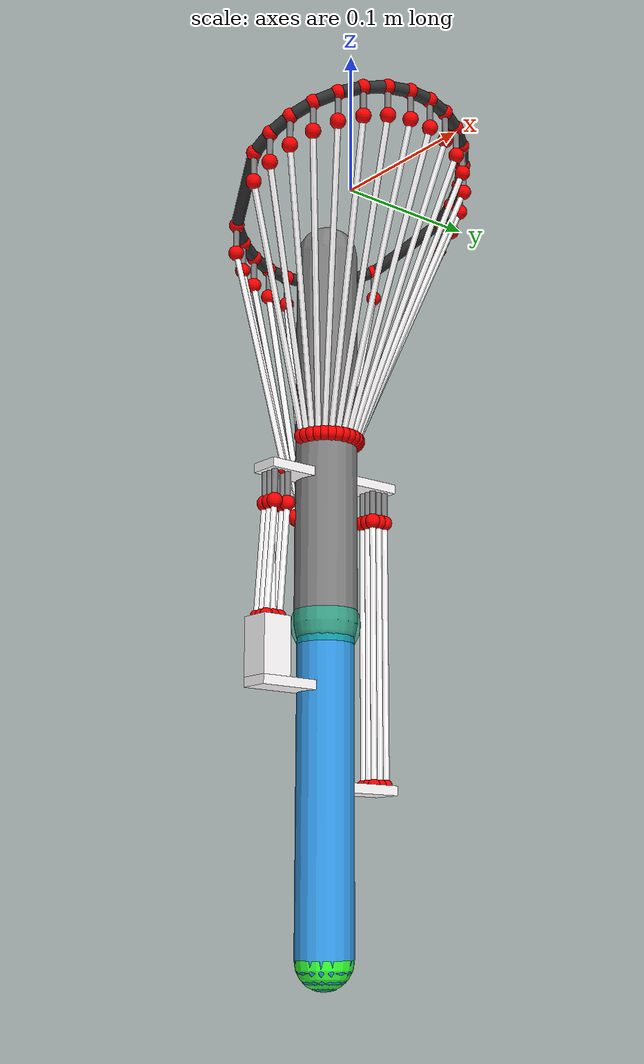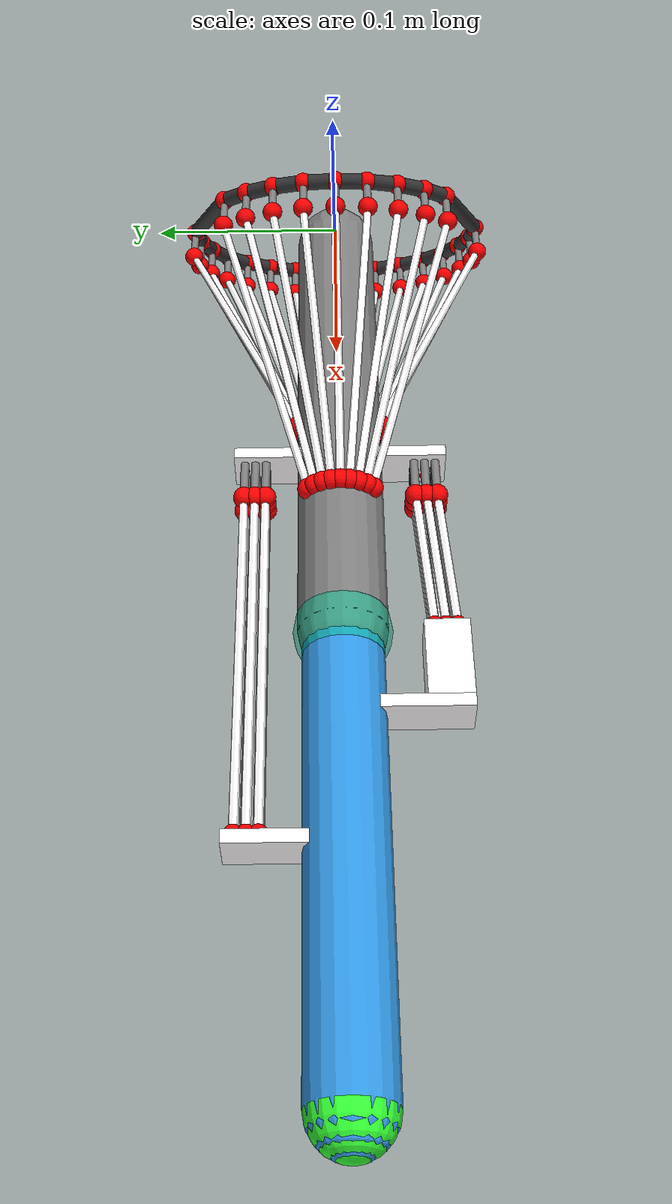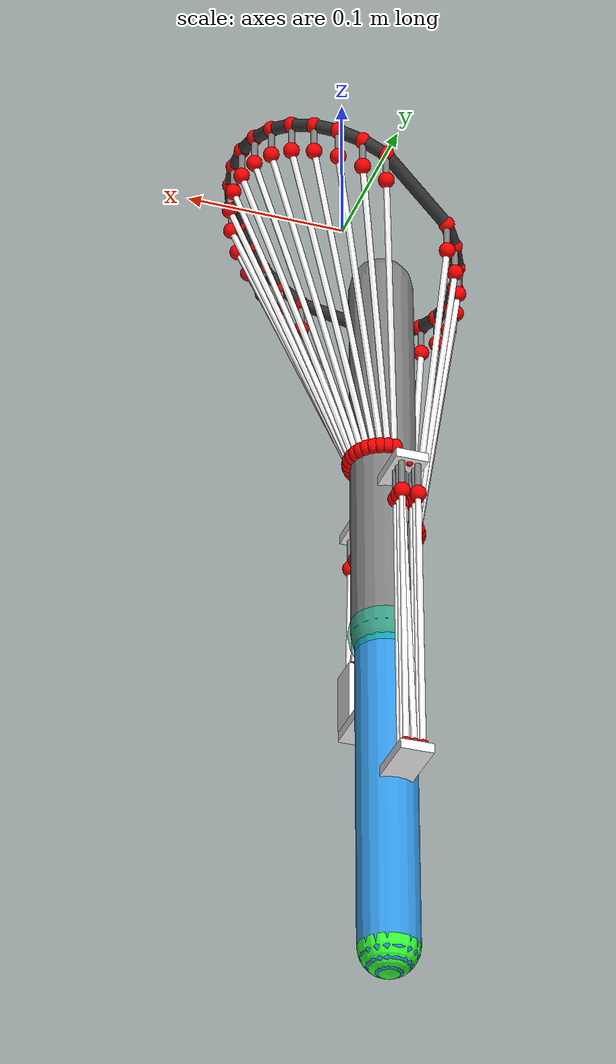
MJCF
<!--
cd ~/mujoco-3.3.5/bin
./simulate ~/Musculoskeletal-System-main/muscular-skeleton-system/system_model_n=4_008.xml
-->

<mujoco model="example4">
<!--    使用trained twice的muscle   -->
    <compiler angle="degree" coordinate="local"/>
    <option timestep="0.002"/>
    <default>
        <site size="0.005" rgba="1 0 0 1"/>
        <!-- switched-state version: tendon force law is handled in Python; XML keeps geometry/range only -->
        <!-- 气动肌肉的物理参数：
             无负载原长：144.9；收缩：86.5 (+40固定长度) springlength="0.185"
             收缩比：0.597
             加220g负载后：241.9；收缩：185.9 （最大不变形负载）
             平均刚度：11.5
             -->
        <!-- biceps tendon -->
        <default class="tendon_A">
            <tendon range="0.05 1"  limited="true"
                     springlength="0" width="0.002" stiffness="0"
                     damping="0" rgba="1 0.99 0.99 1"/>
        </default>

        <default class="tendon_B">
            <tendon range="0.05 1"  limited="true"
                     springlength="0" width="0.002" stiffness="0"
                     damping="0" rgba="1 0.99 0.99 1"/>
        </default>

        <default class="tendon_C">
            <tendon range="0.05 1"  limited="true"
                     springlength="0" width="0.002" stiffness="0"
                     damping="0" rgba="1 0.99 0.99 1"/>
        </default>

        <default class="tendon_D">
            <tendon range="0.05 1"  limited="true"
                     springlength="0" width="0.002" stiffness="0"
                     damping="0" rgba="1 0.99 0.99 1"/>
        </default>

        <default class="tendon_E">
            <tendon range="0.05 1"  limited="true"
                     springlength="0" width="0.002" stiffness="0"
                     damping="0" rgba="1 0.99 0.99 1"/>
        </default>

        <default class="tendon_F">
            <tendon range="0.05 1"  limited="true"
                     springlength="0" width="0.002" stiffness="0"
                     damping="0" rgba="1 0.99 0.99 1"/>
        </default>

        <default class="tendon_G">
            <tendon range="0.05 1"  limited="true"
                     springlength="0" width="0.002" stiffness="0"
                     damping="0" rgba="1 0.99 0.99 1"/>
        </default>

        <default class="tendon_H">
            <tendon range="0.05 1"  limited="true"
                     springlength="0" width="0.002" stiffness="0"
                     damping="0" rgba="1 0.99 0.99 1"/>
        </default>

        <!-- triceps tendon -->
        <default class="tendon_I">
            <tendon range="0.05 1"  limited="true"
                     springlength="0" width="0.002" stiffness="0"
                     damping="0" rgba="1 0.99 0.99 1"/>
        </default>

        <default class="tendon_J">
            <tendon range="0.05 1"  limited="true"
                     springlength="0" width="0.002" stiffness="0"
                     damping="0" rgba="1 0.99 0.99 1"/>
        </default>

        <default class="tendon_K">
            <tendon range="0.05 1"  limited="true"
                     springlength="0" width="0.002" stiffness="0"
                     damping="0" rgba="1 0.99 0.99 1"/>
        </default>

        <default class="tendon_L">
            <tendon range="0.05 1"  limited="true"
                     springlength="0" width="0.002" stiffness="0"
                     damping="0" rgba="1 0.99 0.99 1"/>
        </default>

        <default class="tendon_M">
            <tendon range="0.05 1"  limited="true"
                     springlength="0" width="0.002" stiffness="0"
                     damping="0" rgba="1 0.99 0.99 1"/>
        </default>

        <!-- up-low-connecting tendon -->
        <default class="tendon_N">
            <tendon range="0.05 1"  limited="true"
                     springlength="0" width="0.002" stiffness="0"
                     damping="0" rgba="1 0.99 0.99 1"/>
        </default>

        <default class="tendon_O">
            <tendon range="0.03 1"  limited="true"
                     springlength="0" width="0.002" stiffness="0"
                     damping="0" rgba="1 0.99 0.99 1"/>
        </default>

        <muscle force="0" timeconst="0.1 0.1" scale="1"/>
    </default>

    <asset>
        <texture type="skybox" builtin="gradient" rgb1="1 1 1" rgb2="0.6 0.8 1" width="256" height="256"/>
    </asset>

    <worldbody>
        <!-- 将相邻 fixed_point* 用细胶囊连起来，形成镂空“环”
                 半径：100 mm；倾斜角：30度
             -->
        <body name="anchor_ring" pos="0 0 0">
            <geom name="ring_seg_01" type="capsule" fromto=" 0	-0.08	0                         0.01440456	-0.07825184	0.00831648" size="0.004" rgba="0.2 0.2 0.2 1" contype="1" conaffinity="1"/>
            <geom name="ring_seg_02" type="capsule" fromto=" 0.01440456	-0.07825184	0.00831648     0.02817952	-0.0730836	0.01626944" size="0.004" rgba="0.2 0.2 0.2 1" contype="1" conaffinity="1"/>
            <geom name="ring_seg_03" type="capsule" fromto=" 0.02817952	-0.0730836	0.01626944     0.04072296	-0.06472136	0.02351144" size="0.004" rgba="0.2 0.2 0.2 1" contype="1" conaffinity="1"/>
            <geom name="ring_seg_04" type="capsule" fromto=" 0.04072296	-0.06472136	0.02351144     0.05148656	-0.05353048	0.02972576" size="0.004" rgba="0.2 0.2 0.2 1" contype="1" conaffinity="1"/>
            <geom name="ring_seg_05" type="capsule" fromto=" 0.05148656	-0.05353048	0.02972576     0.06	-0.04	0.03464104" size="0.004" rgba="0.2 0.2 0.2 1" contype="1" conaffinity="1"/>
            <geom name="ring_seg_06" type="capsule" fromto=" 0.06	-0.04	0.03464104             0.06589112	-0.02472136	0.03804224" size="0.004" rgba="0.2 0.2 0.2 1" contype="1" conaffinity="1"/>
            <geom name="ring_seg_07" type="capsule" fromto=" 0.06589112	-0.02472136	0.03804224     0.06890248	-0.00836224	0.03978088" size="0.004" rgba="0.2 0.2 0.2 1" contype="1" conaffinity="1"/>
            <geom name="ring_seg_08" type="capsule" fromto=" 0.06890248	-0.00836224	0.03978088     0.06890248	0.00836224	0.03978088" size="0.004" rgba="0.2 0.2 0.2 1" contype="1" conaffinity="1"/>
            <geom name="ring_seg_09" type="capsule" fromto=" 0.06890248	0.00836224	0.03978088     0.06589112	0.02472136	0.03804224" size="0.004" rgba="0.2 0.2 0.2 1" contype="1" conaffinity="1"/>
            <geom name="ring_seg_10" type="capsule" fromto=" 0.06589112	0.02472136	0.03804224     0.06	0.04	0.03464104" size="0.004" rgba="0.2 0.2 0.2 1" contype="1" conaffinity="1"/>
            <geom name="ring_seg_11" type="capsule" fromto=" 0.06	0.04	0.03464104             0.05148656	0.05353048	0.02972576" size="0.004" rgba="0.2 0.2 0.2 1" contype="1" conaffinity="1"/>
            <geom name="ring_seg_12" type="capsule" fromto=" 0.05148656	0.05353048	0.02972576     0.04072296	0.06472136	0.02351144" size="0.004" rgba="0.2 0.2 0.2 1" contype="1" conaffinity="1"/>
            <geom name="ring_seg_13" type="capsule" fromto=" 0.04072296	0.06472136	0.02351144     0.02817952	0.0730836	0.01626944" size="0.004" rgba="0.2 0.2 0.2 1" contype="1" conaffinity="1"/>
            <geom name="ring_seg_14" type="capsule" fromto=" 0.02817952	0.0730836	0.01626944     0.01440456	0.07825184	0.00831648" size="0.004" rgba="0.2 0.2 0.2 1" contype="1" conaffinity="1"/>
            <geom name="ring_seg_15" type="capsule" fromto=" 0.01440456	0.07825184	0.00831648     0	0.08	0" size="0.004" rgba="0.2 0.2 0.2 1" contype="1" conaffinity="1"/>
            <geom name="ring_seg_16" type="capsule" fromto=" 0	0.08	0                            -0.04635872	0.0594516	-0.0267652" size="0.004" rgba="0.2 0.2 0.2 1" contype="1" conaffinity="1"/>

            <geom name="ring_seg_17" type="capsule" fromto="-0.04635872	0.0594516	-0.0267652   -0.05605032	0.0470228	-0.03236064" size="0.004" rgba="0.2 0.2 0.2 1" contype="1" conaffinity="1"/>
            <geom name="ring_seg_18" type="capsule" fromto="-0.05605032	0.0470228	-0.03236064   -0.06329232	0.03253896	-0.03654184" size="0.004" rgba="0.2 0.2 0.2 1" contype="1" conaffinity="1"/>
            <geom name="ring_seg_19" type="capsule" fromto="-0.06329232	0.03253896	-0.03654184   -0.06776808	0.01663296	-0.03912592" size="0.004" rgba="0.2 0.2 0.2 1" contype="1" conaffinity="1"/>
            <geom name="ring_seg_20" type="capsule" fromto="-0.06776808	0.01663296	-0.03912592   -0.069282032	0	-0.04" size="0.004" rgba="0.2 0.2 0.2 1" contype="1" conaffinity="1"/>
            <geom name="ring_seg_21" type="capsule" fromto="-0.069282032	0	-0.04                -0.06776808	-0.01663296	-0.03912592" size="0.004" rgba="0.2 0.2 0.2 1" contype="1" conaffinity="1"/>
            <geom name="ring_seg_22" type="capsule" fromto="-0.06776808	-0.01663296	-0.03912592   -0.06329232	-0.03253896	-0.03654184" size="0.004" rgba="0.2 0.2 0.2 1" contype="1" conaffinity="1"/>
            <geom name="ring_seg_23" type="capsule" fromto="-0.06329232	-0.03253896	-0.03654184   -0.05605032	-0.0470228	-0.03236064" size="0.004" rgba="0.2 0.2 0.2 1" contype="1" conaffinity="1"/>
            <geom name="ring_seg_24" type="capsule" fromto="-0.05605032	-0.0470228	-0.03236064   -0.04635872	-0.0594516	-0.0267652" size="0.004" rgba="0.2 0.2 0.2 1" contype="1" conaffinity="1"/>
            <geom name="ring_seg_25" type="capsule" fromto="-0.04635872	-0.0594516	-0.0267652    0	-0.08	0" size="0.004" rgba="0.2 0.2 0.2 1" contype="1" conaffinity="1"/>
        </body>

        <!-- 固定基座，无关节 => 焊接到世界，不随 rod 运动 -->
        <body name="anchor_base" pos="0 0 0">
            <site name="fixed_point1"  pos="0	-0.08	0"/>
            <body name="connect_1" pos="0	-0.08	0">
                <joint name="joint1" type="ball" range="0 80" damping="0.1" limited="true"/>
                <geom fromto="0 0   0  0    0	-0.02" size="0.002" type="capsule" density="1200"/>
                <site name="connecting_point1" pos="0 0 -0.02"/>
            </body>
            <site name="fixed_point2"  pos="0.01440456	-0.07825184	0.00831648"/>
            <body name="connect_2" pos="0.01440456	-0.07825184	0.00831648">
                <joint name="joint2" type="ball" range="0 80" damping="0.1" limited="true"/>
                <geom fromto="0 0   0  0    0	-0.02" size="0.002" type="capsule" density="1200"/>
                <site name="connecting_point2" pos="0 0 -0.02"/>
            </body>

            <site name="fixed_point3"  pos="0.02817952	-0.0730836	0.01626944"/>
            <body name="connect_3" pos="0.02817952	-0.0730836	0.01626944">
                <joint name="joint3" type="ball" range="0 80" damping="0.1" limited="true"/>
                <geom fromto="0 0   0  0    0	-0.02" size="0.002" type="capsule" density="1200"/>
                <site name="connecting_point3" pos="0 0 -0.02"/>
            </body>

            <site name="fixed_point4"  pos="0.04072296	-0.06472136	0.02351144"/>
            <body name="connect_4" pos="0.04072296	-0.06472136	0.02351144">
                <joint name="joint4" type="ball" range="0 80" damping="0.1" limited="true"/>
                <geom fromto="0 0   0  0    0	-0.02" size="0.002" type="capsule" density="1200"/>
                <site name="connecting_point4" pos="0 0 -0.02"/>
            </body>

            <site name="fixed_point5"  pos="0.05148656	-0.05353048	0.02972576"/>
            <body name="connect_5" pos="0.05148656	-0.05353048	0.02972576">
                <joint name="joint5" type="ball" range="0 80" damping="0.1" limited="true"/>
                <geom fromto="0 0   0  0    0	-0.02" size="0.002" type="capsule" density="1200"/>
                <site name="connecting_point5" pos="0 0 -0.02"/>
            </body>

            <site name="fixed_point6"  pos="0.06	-0.04	0.03464104"/>
            <body name="connect_6" pos="0.06	-0.04	0.03464104">
                <joint name="joint6" type="ball" range="0 80" damping="0.1" limited="true"/>
                <geom fromto="0 0   0  0    0	-0.02" size="0.002" type="capsule" density="1200"/>
                <site name="connecting_point6" pos="0 0 -0.02"/>
            </body>

            <site name="fixed_point7"  pos="0.06589112	-0.02472136	0.03804224"/>
            <body name="connect_7" pos="0.06589112	-0.02472136	0.03804224">
                <joint name="joint7" type="ball" range="0 80" damping="0.1" limited="true"/>
                <geom fromto="0 0   0  0    0	-0.02" size="0.002" type="capsule" density="1200"/>
                <site name="connecting_point7" pos="0 0 -0.02"/>
            </body>

            <site name="fixed_point8"  pos="0.06890248	-0.00836224	0.03978088"/>
            <body name="connect_8" pos="0.06890248	-0.00836224	0.03978088">
                <joint name="joint8" type="ball" range="0 80" damping="0.1" limited="true"/>
                <geom fromto="0 0   0  0    0	-0.02" size="0.002" type="capsule" density="1200"/>
                <site name="connecting_point8" pos="0 0 -0.02"/>
            </body>

            <site name="fixed_point9"  pos="0.06890248	0.00836224	0.03978088"/>
            <body name="connect_9" pos="0.06890248	0.00836224	0.03978088">
                <joint name="joint9" type="ball" range="0 80" damping="0.1" limited="true"/>
                <geom fromto="0 0   0  0    0	-0.02" size="0.002" type="capsule" density="1200"/>
                <site name="connecting_point9" pos="0 0 -0.02"/>
            </body>

            <site name="fixed_point10" pos="0.06589112	0.02472136	0.03804224"/>
            <body name="connect_10" pos="0.06589112	0.02472136	0.03804224">
                <joint name="joint10" type="ball" range="0 80" damping="0.1" limited="true"/>
                <geom fromto="0 0   0  0    0	-0.02" size="0.002" type="capsule" density="1200"/>
                <site name="connecting_point10" pos="0 0 -0.02"/>
            </body>

            <site name="fixed_point11" pos="0.06	0.04	0.03464104"/>
            <body name="connect_11" pos="0.06	0.04	0.03464104">
                <joint name="joint11" type="ball" range="0 80" damping="0.1" limited="true"/>
                <geom fromto="0 0   0  0    0	-0.02" size="0.002" type="capsule" density="1200"/>
                <site name="connecting_point11" pos="0 0 -0.02"/>
            </body>

            <site name="fixed_point12" pos="0.05148656	0.05353048	0.02972576"/>
            <body name="connect_12" pos="0.05148656	0.05353048	0.02972576">
                <joint name="joint12" type="ball" range="0 80" damping="0.1" limited="true"/>
                <geom fromto="0 0   0  0    0	-0.02" size="0.002" type="capsule" density="1200"/>
                <site name="connecting_point12" pos="0 0 -0.02"/>
            </body>

            <site name="fixed_point13" pos="0.04072296	0.06472136	0.02351144"/>
            <body name="connect_13" pos="0.04072296	0.06472136	0.02351144">
                <joint name="joint13" type="ball" range="0 80" damping="0.1" limited="true"/>
                <geom fromto="0 0   0  0    0	-0.02" size="0.002" type="capsule" density="1200"/>
                <site name="connecting_point13" pos="0 0 -0.02"/>
            </body>

            <site name="fixed_point14" pos="0.02817952	0.0730836	0.01626944"/>
            <body name="connect_14" pos="0.02817952	0.0730836	0.01626944">
                <joint name="joint14" type="ball" range="0 80" damping="0.1" limited="true"/>
                <geom fromto="0 0   0  0    0	-0.02" size="0.002" type="capsule" density="1200"/>
                <site name="connecting_point14" pos="0 0 -0.02"/>
            </body>

            <site name="fixed_point15" pos="0.01440456	0.07825184	0.00831648"/>
            <body name="connect_15" pos="0.01440456	0.07825184	0.00831648">
                <joint name="joint15" type="ball" range="0 80" damping="0.1" limited="true"/>
                <geom fromto="0 0   0  0    0	-0.02" size="0.002" type="capsule" density="1200"/>
                <site name="connecting_point15" pos="0 0 -0.02"/>
            </body>

            <site name="fixed_point16" pos="0	0.08	0"/>
            <body name="connect_16" pos="0	0.08	0">
                <joint name="joint16" type="ball" range="0 80" damping="0.1" limited="true"/>
                <geom fromto="0 0   0  0    0	-0.02" size="0.002" type="capsule" density="1200"/>
                <site name="connecting_point16" pos="0 0 -0.02"/>
            </body>

            <site name="fixed_point17" pos="-0.04635872	0.0594516	-0.0267652"/>
            <body name="connect_17" pos="-0.04635872	0.0594516	-0.0267652">
                <joint name="joint17" type="ball" range="0 80" damping="0.1" limited="true"/>
                <geom fromto="0 0   0  0    0	-0.02" size="0.002" type="capsule" density="1200"/>
                <site name="connecting_point17" pos="0 0 -0.02"/>
            </body>

            <site name="fixed_point18" pos="-0.05605032	0.0470228	-0.03236064"/>
            <body name="connect_18" pos="-0.05605032	0.0470228	-0.03236064">
                <joint name="joint18" type="ball" range="0 80" damping="0.1" limited="true"/>
                <geom fromto="0 0   0  0    0	-0.02" size="0.002" type="capsule" density="1200"/>
                <site name="connecting_point18" pos="0 0 -0.02"/>
            </body>

            <site name="fixed_point19" pos="-0.06329232	0.03253896	-0.03654184"/>
            <body name="connect_19" pos="-0.06329232	0.03253896	-0.03654184">
                <joint name="joint19" type="ball" range="0 80" damping="0.1" limited="true"/>
                <geom fromto="0 0   0  0    0	-0.02" size="0.002" type="capsule" density="1200"/>
                <site name="connecting_point19" pos="0 0 -0.02"/>
            </body>

            <site name="fixed_point20" pos="-0.06776808	0.01663296	-0.03912592"/>
            <body name="connect_20" pos="-0.06776808	0.01663296	-0.03912592">
                <joint name="joint20" type="ball" range="0 80" damping="0.1" limited="true"/>
                <geom fromto="0 0   0  0    0	-0.02" size="0.002" type="capsule" density="1200"/>
                <site name="connecting_point20" pos="0 0 -0.02"/>
            </body>

            <site name="fixed_point21" pos="-0.069282032	0	-0.04"/>
            <body name="connect_21" pos="-0.069282032	0	-0.04">
                <joint name="joint21" type="ball" range="0 80" damping="0.1" limited="true"/>
                <geom fromto="0 0   0  0    0	-0.02" size="0.002" type="capsule" density="1200"/>
                <site name="connecting_point21" pos="0 0 -0.02"/>
            </body>

            <site name="fixed_point22" pos="-0.06776808	-0.01663296	-0.03912592"/>
            <body name="connect_22" pos="-0.06776808	-0.01663296	-0.03912592">
                <joint name="joint22" type="ball" range="0 80" damping="0.1" limited="true"/>
                <geom fromto="0 0   0  0    0	-0.02" size="0.002" type="capsule" density="1200"/>
                <site name="connecting_point22" pos="0 0 -0.02"/>
            </body>

            <site name="fixed_point23" pos="-0.06329232	-0.03253896	-0.03654184"/>
            <body name="connect_23" pos="-0.06329232	-0.03253896	-0.03654184">
                <joint name="joint23" type="ball" range="0 80" damping="0.1" limited="true"/>
                <geom fromto="0 0   0  0    0	-0.02" size="0.002" type="capsule" density="1200"/>
                <site name="connecting_point23" pos="0 0 -0.02"/>
            </body>

            <site name="fixed_point24" pos="-0.05605032	-0.0470228	-0.03236064"/>
            <body name="connect_24" pos="-0.05605032	-0.0470228	-0.03236064">
                <joint name="joint24" type="ball" range="0 80" damping="0.1" limited="true"/>
                <geom fromto="0 0   0  0    0	-0.02" size="0.002" type="capsule" density="1200"/>
                <site name="connecting_point24" pos="0 0 -0.02"/>
            </body>

            <site name="fixed_point25" pos="-0.04635872	-0.0594516	-0.0267652"/>
            <body name="connect_25" pos="-0.04635872	-0.0594516	-0.0267652">
                <joint name="joint25" type="ball" range="0 80" damping="0.1" limited="true"/>
                <geom fromto="0 0   0  0    0	-0.02" size="0.002" type="capsule" density="1200"/>
                <site name="connecting_point25" pos="0 0 -0.02"/>
            </body>

        </body>

        <!-- 定义直杆 -->
        <body name="rod" pos="-0.025 0 0">
            <joint name="rod_joint" type="ball" pos="0 0 -0.04" range="0 80" damping="0.1" limited="true"/>
            <!-- 杆长：25cm -->
            <geom fromto="0 0 -0.04  0 0 -0.29" size="0.02" type="capsule"/>
            <inertial pos="0 0 -0.165" mass="0.10" diaginertia="0.003375 0.003375 0.0005"/>

            <!-- 外伸耳板：上下臂肌肉，上臂anchorpoint -->
            <geom name="anchor_plate1" type="box" pos="0.00 0.03 -0.195"
                size="0.01 0.02 0.003" contype="0" conaffinity="0" density="1200" rgba="1 0.99 0.99 1"/>
            <geom name="anchor_plate2" type="box" pos="0.00 -0.03 -0.195"
                size="0.01 0.02 0.003" contype="0" conaffinity="0" density="1200" rgba="1 0.99 0.99 1"/>

            <!-- 耳板上的连接孔位（用于 tendon/muscle 路径点） -->
            <site name="up_front1" pos="-0.005 0.035 -0.198" size="0.002" rgba="1 0 0 1"/>
            <body name="updown_front_connect_1" pos="-0.005 0.035 -0.198">
                <joint name="updown_front_joint1" type="ball" range="0 80" damping="0.1" limited="true"/>
                <geom fromto="0 0   0  0    0	-0.02" size="0.002" type="capsule" density="1200"/>
                <site name="up_front_attach1" pos="0 0 -0.02"/>
            </body>

            <site name="up_front2" pos=" 0.00  0.035 -0.198" size="0.002" rgba="1 0 0 1"/>
            <body name="updown_front_connect_2" pos="0.00 0.035 -0.198">
                <joint name="updown_front_joint2" type="ball" range="0 80" damping="0.1" limited="true"/>
                <geom fromto="0 0   0  0    0	-0.02" size="0.002" type="capsule" density="1200"/>
                <site name="up_front_attach2" pos="0 0 -0.02"/>
            </body>

            <site name="up_front3" pos=" 0.005 0.035 -0.198" size="0.002" rgba="1 0 0 1"/>
            <body name="updown_front_connect_3" pos="0.005 0.035 -0.198">
                <joint name="updown_front_joint3" type="ball" range="0 80" damping="0.1" limited="true"/>
                <geom fromto="0 0   0  0    0	-0.02" size="0.002" type="capsule" density="1200"/>
                <site name="up_front_attach3" pos="0 0 -0.02"/>
            </body>

            <site name="up_front4" pos="-0.005 0.04  -0.198" size="0.002" rgba="1 0 0 1"/>
            <body name="updown_front_connect_4" pos="-0.005 0.04 -0.198">
                <joint name="updown_front_joint4" type="ball" range="0 80" damping="0.1" limited="true"/>
                <geom fromto="0 0   0  0    0	-0.02" size="0.002" type="capsule" density="1200"/>
                <site name="up_front_attach4" pos="0 0 -0.02"/>
            </body>

            <site name="up_front5" pos=" 0.005 0.04  -0.198" size="0.002" rgba="1 0 0 1"/>
            <body name="updown_front_connect_5" pos="0.005 0.04 -0.198">
                <joint name="updown_front_joint5" type="ball" range="0 80" damping="0.1" limited="true"/>
                <geom fromto="0 0   0  0    0	-0.02" size="0.002" type="capsule" density="1200"/>
                <site name="up_front_attach5" pos="0 0 -0.02"/>
            </body>

            <site name="up_front6" pos="-0.005 0.045 -0.198" size="0.002" rgba="1 0 0 1"/>
            <body name="updown_front_connect_6" pos="-0.005 0.045 -0.198">
                <joint name="updown_front_joint6" type="ball" range="0 80" damping="0.1" limited="true"/>
                <geom fromto="0 0   0  0    0	-0.02" size="0.002" type="capsule" density="1200"/>
                <site name="up_front_attach6" pos="0 0 -0.02"/>
            </body>

            <site name="up_front7" pos=" 0.00  0.045 -0.198" size="0.002" rgba="1 0 0 1"/>
            <body name="updown_front_connect_7" pos="0.005 0.045 -0.198">
                <joint name="updown_front_joint7" type="ball" range="0 80" damping="0.1" limited="true"/>
                <geom fromto="0 0   0  0    0	-0.02" size="0.002" type="capsule" density="1200"/>
                <site name="up_front_attach7" pos="0 0 -0.02"/>
            </body>

            <site name="up_front8" pos=" 0.005 0.045 -0.198" size="0.002" rgba="1 0 0 1"/>
            <body name="updown_front_connect_8" pos="0.005 0.045 -0.198">
                <joint name="updown_front_joint8" type="ball" range="0 80" damping="0.1" limited="true"/>
                <geom fromto="0 0   0  0    0	-0.02" size="0.002" type="capsule" density="1200"/>
                <site name="up_front_attach8" pos="0 0 -0.02"/>
            </body>

            <site name="up_behind1" pos="-0.005 -0.035 -0.198" size="0.002" rgba="1 0 0 1"/>
            <body name="updown_behind_connect_1" pos="-0.005 -0.035 -0.198">
                <joint name="updown_behind_joint1" type="ball" range="0 80" damping="0.1" limited="true"/>
                <geom fromto="0 0   0  0    0	-0.02" size="0.002" type="capsule" density="1200"/>
                <site name="up_behind_attach1" pos="0 0 -0.02"/>
            </body>

            <site name="up_behind2" pos=" 0.00  -0.035 -0.198" size="0.002" rgba="1 0 0 1"/>
            <body name="updown_behind_connect_2" pos="0.00 -0.035 -0.198">
                <joint name="updown_behind_joint2" type="ball" range="0 80" damping="0.1" limited="true"/>
                <geom fromto="0 0   0  0    0	-0.02" size="0.002" type="capsule" density="1200"/>
                <site name="up_behind_attach2" pos="0 0 -0.02"/>
            </body>

            <site name="up_behind3" pos=" 0.005 -0.035 -0.198" size="0.002" rgba="1 0 0 1"/>
            <body name="updown_behind_connect_3" pos="0.005 -0.035 -0.198">
                <joint name="updown_behind_joint3" type="ball" range="0 80" damping="0.1" limited="true"/>
                <geom fromto="0 0   0  0    0	-0.02" size="0.002" type="capsule" density="1200"/>
                <site name="up_behind_attach3" pos="0 0 -0.02"/>
            </body>

            <site name="up_behind4" pos="-0.005 -0.04  -0.198" size="0.002" rgba="1 0 0 1"/>
            <body name="updown_behind_connect_4" pos="-0.005 -0.04 -0.198">
                <joint name="updown_behind_joint4" type="ball" range="0 80" damping="0.1" limited="true"/>
                <geom fromto="0 0   0  0    0	-0.02" size="0.002" type="capsule" density="1200"/>
                <site name="up_behind_attach4" pos="0 0 -0.02"/>
            </body>

            <site name="up_behind5" pos=" 0.005 -0.04  -0.198" size="0.002" rgba="1 0 0 1"/>
            <body name="updown_behind_connect_5" pos="-0.005 -0.04 -0.198">
                <joint name="updown_behind_joint5" type="ball" range="0 80" damping="0.1" limited="true"/>
                <geom fromto="0 0   0  0    0	-0.02" size="0.002" type="capsule" density="1200"/>
                <site name="up_behind_attach5" pos="0 0 -0.02"/>
            </body>

            <site name="up_behind6" pos="-0.005 -0.045 -0.198" size="0.002" rgba="1 0 0 1"/>
            <body name="updown_behind_connect_6" pos="-0.005 -0.045 -0.198">
                <joint name="updown_behind_joint6" type="ball" range="0 80" damping="0.1" limited="true"/>
                <geom fromto="0 0   0  0    0	-0.02" size="0.002" type="capsule" density="1200"/>
                <site name="up_behind_attach6" pos="0 0 -0.02"/>
            </body>

            <site name="up_behind7" pos=" 0.00  -0.045 -0.198" size="0.002" rgba="1 0 0 1"/>
            <body name="updown_behind_connect_7" pos="0.00 -0.045 -0.198">
                <joint name="updown_behind_joint7" type="ball" range="0 80" damping="0.1" limited="true"/>
                <geom fromto="0 0   0  0    0	-0.02" size="0.002" type="capsule" density="1200"/>
                <site name="up_behind_attach7" pos="0 0 -0.02"/>
            </body>

            <site name="up_behind8" pos=" 0.005 -0.045 -0.198" size="0.002" rgba="1 0 0 1"/>
            <body name="updown_behind_connect_8" pos="0.005 -0.045 -0.198">
                <joint name="updown_behind_joint8" type="ball" range="0 80" damping="0.1" limited="true"/>
                <geom fromto="0 0   0  0    0	-0.02" size="0.002" type="capsule" density="1200"/>
                <site name="up_behind_attach8" pos="0 0 -0.02"/>
            </body>

            <!-- 定义直杆上所有连接肌肉的位点 -->
            <site name="upperarm_connecting_point1" pos="0	-0.02 -0.170"/>
            <site name="upperarm_connecting_point2" pos="0.004158234	-0.019562952 -0.170"/>
            <site name="upperarm_connecting_point3" pos="0.008134733	-0.018270909 -0.170"/>
            <site name="upperarm_connecting_point4" pos="0.011755705	-0.01618034 -0.170"/>
            <site name="upperarm_connecting_point5" pos="0.014862897	-0.013382612 -0.170"/>
            <site name="upperarm_connecting_point6" pos="0.017320508    -0.01 -0.170"/>
            <site name="upperarm_connecting_point7" pos="0.01902113     -0.00618034 -0.170"/>
            <site name="upperarm_connecting_point8" pos="0.019890438    -0.002090569 -0.170"/>
            <site name="upperarm_connecting_point9" pos="0.019890438	0.002090569 -0.170"/>
            <site name="upperarm_connecting_point10" pos="0.01902113	0.00618034 -0.170"/>
            <site name="upperarm_connecting_point11" pos="0.017320508	0.01 -0.170"/>
            <site name="upperarm_connecting_point12" pos="0.014862897	0.013382612 -0.170"/>
            <site name="upperarm_connecting_point13" pos="0.011755705	0.01618034 -0.170"/>
            <site name="upperarm_connecting_point14" pos="0.008134733	0.018270909 -0.170"/>
            <site name="upperarm_connecting_point15" pos="0.004158234	0.019562952 -0.170"/>
            <site name="upperarm_connecting_point16" pos="0	0.02 -0.170"/>

            <site name="upperarm_connecting_point17" pos="-0.013382612	0.014862897 -0.220"/>
            <site name="upperarm_connecting_point18" pos="-0.01618034	0.011755705 -0.220"/>
            <site name="upperarm_connecting_point19" pos="-0.018270909	0.008134733 -0.220"/>
            <site name="upperarm_connecting_point20" pos="-0.019562952	0.004158234 -0.220"/>
            <site name="upperarm_connecting_point21" pos="-0.02	0.00 -0.220"/>
            <site name="upperarm_connecting_point22" pos="-0.019562952	-0.004158234 -0.220"/>
            <site name="upperarm_connecting_point23" pos="-0.018270909	-0.008134733 -0.220"/>
            <site name="upperarm_connecting_point24" pos="-0.01618034	-0.011755705 -0.220"/>
            <site name="upperarm_connecting_point25" pos="-0.013382612	-0.014862897 -0.220"/>

            <body name="elbow" pos="0 0 -0.29">
                <!-- 肘关节：绕 y 轴转动（屈伸），角度 0~140 度，可按需要调 -->
                <joint name="elbow_flex" type="hinge" pos="0 0 0" axis="1 0 0"
                       range="0 140" limited="true" damping="0.1"/>

                <!-- 肘部关节（用小球表示） -->
                <geom name="elbow_sphere" type="sphere" size="0.022"
                      rgba="0.0 0.8 0.6 0.5" contype="1" conaffinity="1" />

                <!-- 下臂本体：从肘部沿 -z 方向延伸一段长度 -->
                <body name="forearm" pos="0 0 0">
                    <!-- 下臂几何；L = 0.20 m，可按需调 -->
                    <geom name="forearm_capsule" type="capsule" size="0.018"
                          fromto="0 0 0   0 0 -0.20"
                          rgba="0.2 0.6 0.9 1" contype="1" conaffinity="1"/>

                    <!-- 下臂惯性（简化设置）：质心居中，质量 0.08 kg，可按需调 -->
                    <inertial pos="0 0 -0.10" mass="0.08" diaginertia="0.00032 0.00032 0.00012"/>

                    <!-- 外伸耳板 -->
                    <geom name="anchor_plate3" type="box" pos="0.00  0.03 -0.10"
                          size="0.01 0.02 0.003" contype="0" conaffinity="0" density="1200" rgba="1 0.99 0.99 1"/>
                    <geom name="anchor_plate4" type="box" pos="0.00 -0.03 -0.04"
                          size="0.01 0.025 0.003" contype="1" conaffinity="1" density="1200" rgba="1 0.99 0.99 1"/>
                    <geom name="anchor_plate5" type="box" pos="0.00 -0.045 -0.0185"
                          size="0.01 0.01 0.0185" contype="1" conaffinity="1" density="1200" rgba="1 0.99 0.99 1"/>

                    <!-- 下臂（forearm）中段的侧向锚点，略偏 +x，pos 相对肘部局部坐标 -->
                    <site name="down_front_attach1"  pos="-0.005 0.035 -0.097" size="0.004" rgba="1 0 0 1"/>
                    <site name="down_front_attach2"  pos=" 0.00  0.035 -0.097" size="0.004" rgba="1 0 0 1"/>
                    <site name="down_front_attach3"  pos=" 0.005 0.035 -0.097" size="0.004" rgba="1 0 0 1"/>
                    <site name="down_front_attach4"  pos="-0.005 0.040 -0.097" size="0.004" rgba="1 0 0 1"/>

                    <site name="down_front_attach5"  pos=" 0.005 0.040 -0.097" size="0.004" rgba="1 0 0 1"/>
                    <site name="down_front_attach6"  pos="-0.005 0.045 -0.097" size="0.004" rgba="1 0 0 1"/>
                    <site name="down_front_attach7"  pos=" 0.00  0.045 -0.097" size="0.004" rgba="1 0 0 1"/>
                    <site name="down_front_attach8"  pos=" 0.005 0.045 -0.097" size="0.004" rgba="1 0 0 1"/>

                    <site name="down_behind_attach1" pos="-0.005 -0.040 0" size="0.004" rgba="1 0 0 1"/>
                    <site name="down_behind_attach2" pos=" 0.00  -0.040 0" size="0.004" rgba="1 0 0 1"/>
                    <site name="down_behind_attach3" pos=" 0.005 -0.040 0" size="0.004" rgba="1 0 0 1"/>
                    <site name="down_behind_attach4" pos="-0.005 -0.045 0" size="0.004" rgba="1 0 0 1"/>

                    <site name="down_behind_attach5" pos=" 0.005 -0.045 0" size="0.004" rgba="1 0 0 1"/>
                    <site name="down_behind_attach6" pos="-0.005 -0.050 0" size="0.004" rgba="1 0 0 1"/>
                    <site name="down_behind_attach7" pos=" 0.00  -0.050 0" size="0.004" rgba="1 0 0 1"/>
                    <site name="down_behind_attach8" pos=" 0.005 -0.050 0" size="0.004" rgba="1 0 0 1"/>

                    <!-- 下臂末端的参考 site（可用于末端定位/传感） -->
                    <body name="forearm_tip" pos="0 0 -0.20">
                        <geom contype="0" rgba="0.2 1 0.2 1" size=".018" type="sphere"/>
                    </body>

                </body>
            </body>

        </body>
    </worldbody>

    <tendon>
        <spatial name="tendon1" class="tendon_A"><site site="connecting_point1"/><site site="upperarm_connecting_point1"/></spatial>
        <spatial name="tendon2" class="tendon_B"><site site="connecting_point2"/><site site="upperarm_connecting_point2"/></spatial>
        <spatial name="tendon3" class="tendon_C"><site site="connecting_point3"/><site site="upperarm_connecting_point3"/></spatial>
        <spatial name="tendon4" class="tendon_D"><site site="connecting_point4"/><site site="upperarm_connecting_point4"/></spatial>
        <spatial name="tendon5" class="tendon_E"><site site="connecting_point5"/><site site="upperarm_connecting_point5"/></spatial>
        <spatial name="tendon6" class="tendon_F"><site site="connecting_point6"/><site site="upperarm_connecting_point6"/></spatial>
        <spatial name="tendon7" class="tendon_G"><site site="connecting_point7"/><site site="upperarm_connecting_point7"/></spatial>
        <spatial name="tendon8" class="tendon_H"><site site="connecting_point8"/><site site="upperarm_connecting_point8"/></spatial>
        <spatial name="tendon9" class="tendon_H"><site site="connecting_point9"/><site site="upperarm_connecting_point9"/></spatial>
        <spatial name="tendon10" class="tendon_G"><site site="connecting_point10"/><site site="upperarm_connecting_point10"/></spatial>
        <spatial name="tendon11" class="tendon_F"><site site="connecting_point11"/><site site="upperarm_connecting_point11"/></spatial>
        <spatial name="tendon12" class="tendon_E"><site site="connecting_point12"/><site site="upperarm_connecting_point12"/></spatial>
        <spatial name="tendon13" class="tendon_D"><site site="connecting_point13"/><site site="upperarm_connecting_point13"/></spatial>
        <spatial name="tendon14" class="tendon_C"><site site="connecting_point14"/><site site="upperarm_connecting_point14"/></spatial>
        <spatial name="tendon15" class="tendon_B"><site site="connecting_point15"/><site site="upperarm_connecting_point15"/></spatial>
        <spatial name="tendon16" class="tendon_A"><site site="connecting_point16"/><site site="upperarm_connecting_point16"/></spatial>

        <spatial name="tendon17" class="tendon_I"><site site="connecting_point17"/><site site="upperarm_connecting_point17"/></spatial>
        <spatial name="tendon18" class="tendon_J"><site site="connecting_point18"/><site site="upperarm_connecting_point18"/></spatial>
        <spatial name="tendon19" class="tendon_K"><site site="connecting_point19"/><site site="upperarm_connecting_point19"/></spatial>
        <spatial name="tendon20" class="tendon_L"><site site="connecting_point20"/><site site="upperarm_connecting_point20"/></spatial>
        <spatial name="tendon21" class="tendon_M"><site site="connecting_point21"/><site site="upperarm_connecting_point21"/></spatial>
        <spatial name="tendon22" class="tendon_L"><site site="connecting_point22"/><site site="upperarm_connecting_point22"/></spatial>
        <spatial name="tendon23" class="tendon_K"><site site="connecting_point23"/><site site="upperarm_connecting_point23"/></spatial>
        <spatial name="tendon24" class="tendon_J"><site site="connecting_point24"/><site site="upperarm_connecting_point24"/></spatial>
        <spatial name="tendon25" class="tendon_I"><site site="connecting_point25"/><site site="upperarm_connecting_point25"/></spatial>
    </tendon>

    <tendon>
        <spatial name="elbow_front_tendon1" class="tendon_N"><site site="up_front_attach1"/><site site="down_front_attach1"/></spatial>
        <spatial name="elbow_front_tendon2" class="tendon_N"><site site="up_front_attach2"/><site site="down_front_attach2"/></spatial>
        <spatial name="elbow_front_tendon3" class="tendon_N"><site site="up_front_attach3"/><site site="down_front_attach3"/></spatial>
        <spatial name="elbow_front_tendon4" class="tendon_N"><site site="up_front_attach4"/><site site="down_front_attach4"/></spatial>
        <spatial name="elbow_front_tendon5" class="tendon_N"><site site="up_front_attach5"/><site site="down_front_attach5"/></spatial>
        <spatial name="elbow_front_tendon6" class="tendon_N"><site site="up_front_attach6"/><site site="down_front_attach6"/></spatial>
        <spatial name="elbow_front_tendon7" class="tendon_N"><site site="up_front_attach7"/><site site="down_front_attach7"/></spatial>
        <spatial name="elbow_front_tendon8" class="tendon_N"><site site="up_front_attach8"/><site site="down_front_attach8"/></spatial>

        <spatial name="elbow_behind_tendon1" class="tendon_O"><site site="up_behind_attach1"/><site site="down_behind_attach1"/></spatial>
        <spatial name="elbow_behind_tendon2" class="tendon_O"><site site="up_behind_attach2"/><site site="down_behind_attach2"/></spatial>
        <spatial name="elbow_behind_tendon3" class="tendon_O"><site site="up_behind_attach3"/><site site="down_behind_attach3"/></spatial>
        <spatial name="elbow_behind_tendon4" class="tendon_O"><site site="up_behind_attach4"/><site site="down_behind_attach4"/></spatial>
        <spatial name="elbow_behind_tendon5" class="tendon_O"><site site="up_behind_attach5"/><site site="down_behind_attach5"/></spatial>
        <spatial name="elbow_behind_tendon6" class="tendon_O"><site site="up_behind_attach6"/><site site="down_behind_attach6"/></spatial>
        <spatial name="elbow_behind_tendon7" class="tendon_O"><site site="up_behind_attach7"/><site site="down_behind_attach7"/></spatial>
        <spatial name="elbow_behind_tendon8" class="tendon_O"><site site="up_behind_attach8"/><site site="down_behind_attach8"/></spatial>

    </tendon>

    <actuator>
        <muscle name="muscle1" tendon="tendon1" lengthrange="0.05 0.35" ctrllimited="true" ctrlrange="0 1"/>
        <muscle name="muscle2" tendon="tendon2" lengthrange="0.05 0.35" ctrllimited="true" ctrlrange="0 1"/>
        <muscle name="muscle3" tendon="tendon3" lengthrange="0.05 0.35" ctrllimited="true" ctrlrange="0 1"/>
        <muscle name="muscle4" tendon="tendon4" lengthrange="0.05 0.35" ctrllimited="true" ctrlrange="0 1"/>
        <muscle name="muscle5" tendon="tendon5" lengthrange="0.05 0.35" ctrllimited="true" ctrlrange="0 1"/>
        <muscle name="muscle6" tendon="tendon6" lengthrange="0.05 0.35" ctrllimited="true" ctrlrange="0 1"/>
        <muscle name="muscle7" tendon="tendon7" lengthrange="0.05 0.35" ctrllimited="true" ctrlrange="0 1"/>
        <muscle name="muscle8" tendon="tendon8" lengthrange="0.05 0.35" ctrllimited="true" ctrlrange="0 1"/>
        <muscle name="muscle9" tendon="tendon9" lengthrange="0.05 0.35" ctrllimited="true" ctrlrange="0 1"/>
        <muscle name="muscle10" tendon="tendon10" lengthrange="0.05 0.35" ctrllimited="true" ctrlrange="0 1"/>
        <muscle name="muscle11" tendon="tendon11" lengthrange="0.05 0.35" ctrllimited="true" ctrlrange="0 1"/>
        <muscle name="muscle12" tendon="tendon12" lengthrange="0.05 0.35" ctrllimited="true" ctrlrange="0 1"/>
        <muscle name="muscle13" tendon="tendon13" lengthrange="0.05 0.35" ctrllimited="true" ctrlrange="0 1"/>
        <muscle name="muscle14" tendon="tendon14" lengthrange="0.05 0.35" ctrllimited="true" ctrlrange="0 1"/>
        <muscle name="muscle15" tendon="tendon15" lengthrange="0.05 0.35" ctrllimited="true" ctrlrange="0 1"/>
        <muscle name="muscle16" tendon="tendon16" lengthrange="0.05 0.35" ctrllimited="true" ctrlrange="0 1"/>

        <muscle name="muscle17" tendon="tendon17" lengthrange="0.05 0.35" ctrllimited="true" ctrlrange="0 1"/>
        <muscle name="muscle18" tendon="tendon18" lengthrange="0.05 0.35" ctrllimited="true" ctrlrange="0 1"/>
        <muscle name="muscle19" tendon="tendon19" lengthrange="0.05 0.35" ctrllimited="true" ctrlrange="0 1"/>
        <muscle name="muscle20" tendon="tendon20" lengthrange="0.05 0.35" ctrllimited="true" ctrlrange="0 1"/>
        <muscle name="muscle21" tendon="tendon21" lengthrange="0.05 0.35" ctrllimited="true" ctrlrange="0 1"/>
        <muscle name="muscle22" tendon="tendon22" lengthrange="0.05 0.35" ctrllimited="true" ctrlrange="0 1"/>
        <muscle name="muscle23" tendon="tendon23" lengthrange="0.05 0.35" ctrllimited="true" ctrlrange="0 1"/>
        <muscle name="muscle24" tendon="tendon24" lengthrange="0.05 0.35" ctrllimited="true" ctrlrange="0 1"/>
        <muscle name="muscle25" tendon="tendon25" lengthrange="0.05 0.35" ctrllimited="true" ctrlrange="0 1"/>

        <muscle name="elbow_front_flexor1" tendon="elbow_front_tendon1" lengthrange="0.05 0.35" ctrllimited="true" ctrlrange="0 1"/>
        <muscle name="elbow_front_flexor2" tendon="elbow_front_tendon2" lengthrange="0.05 0.35" ctrllimited="true" ctrlrange="0 1"/>
        <muscle name="elbow_front_flexor3" tendon="elbow_front_tendon3" lengthrange="0.05 0.35" ctrllimited="true" ctrlrange="0 1"/>
        <muscle name="elbow_front_flexor4" tendon="elbow_front_tendon4" lengthrange="0.05 0.35" ctrllimited="true" ctrlrange="0 1"/>
        <muscle name="elbow_front_flexor5" tendon="elbow_front_tendon5" lengthrange="0.05 0.35" ctrllimited="true" ctrlrange="0 1"/>
        <muscle name="elbow_front_flexor6" tendon="elbow_front_tendon6" lengthrange="0.05 0.35" ctrllimited="true" ctrlrange="0 1"/>
        <muscle name="elbow_front_flexor7" tendon="elbow_front_tendon7" lengthrange="0.05 0.35" ctrllimited="true" ctrlrange="0 1"/>
        <muscle name="elbow_front_flexor8" tendon="elbow_front_tendon8" lengthrange="0.05 0.35" ctrllimited="true" ctrlrange="0 1"/>

        <muscle name="elbow_behind_flexor1" tendon="elbow_behind_tendon1" lengthrange="0.05 0.35" ctrllimited="true" ctrlrange="0 1"/>
        <muscle name="elbow_behind_flexor2" tendon="elbow_behind_tendon2" lengthrange="0.05 0.35" ctrllimited="true" ctrlrange="0 1"/>
        <muscle name="elbow_behind_flexor3" tendon="elbow_behind_tendon3" lengthrange="0.05 0.35" ctrllimited="true" ctrlrange="0 1"/>
        <muscle name="elbow_behind_flexor4" tendon="elbow_behind_tendon4" lengthrange="0.05 0.35" ctrllimited="true" ctrlrange="0 1"/>
        <muscle name="elbow_behind_flexor5" tendon="elbow_behind_tendon5" lengthrange="0.05 0.35" ctrllimited="true" ctrlrange="0 1"/>
        <muscle name="elbow_behind_flexor6" tendon="elbow_behind_tendon6" lengthrange="0.05 0.35" ctrllimited="true" ctrlrange="0 1"/>
        <muscle name="elbow_behind_flexor7" tendon="elbow_behind_tendon7" lengthrange="0.05 0.35" ctrllimited="true" ctrlrange="0 1"/>
        <muscle name="elbow_behind_flexor8" tendon="elbow_behind_tendon8" lengthrange="0.05 0.35" ctrllimited="true" ctrlrange="0 1"/>

    </actuator>
</mujoco>

<!--
圆盘半径 10cm
大臂 25cm，小臂 20cm
起始位置0.069m
大臂 100g，小臂 80g
-->
